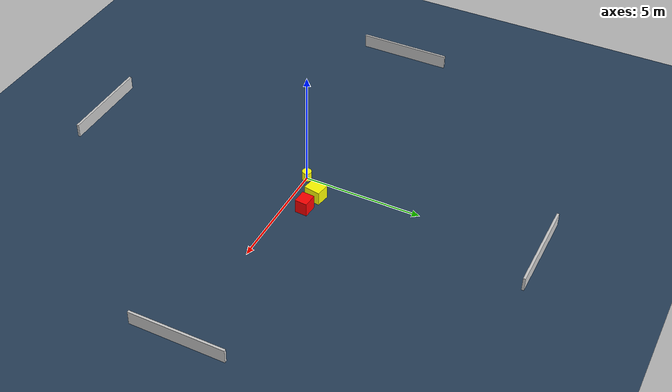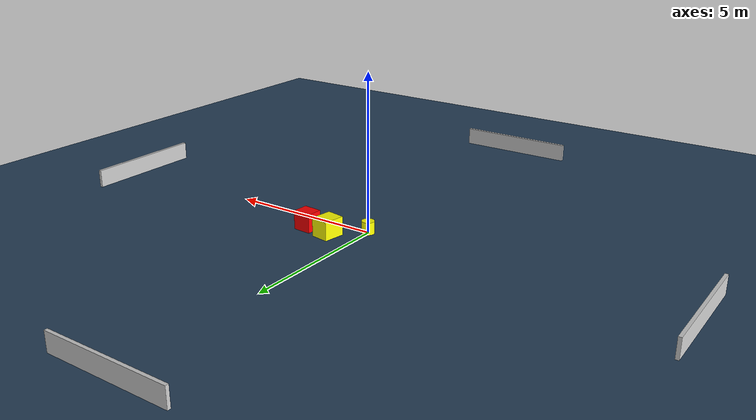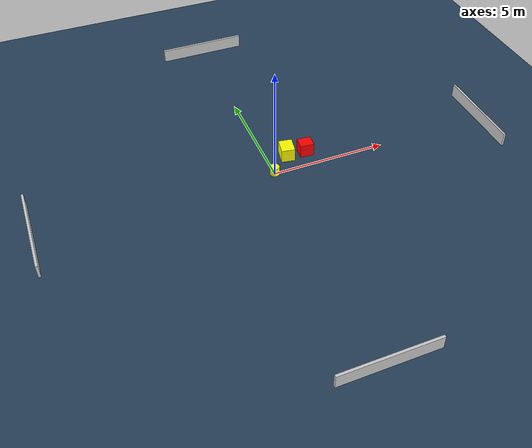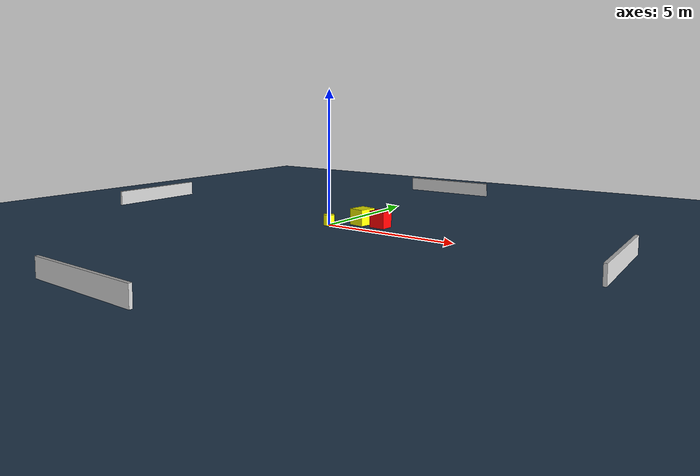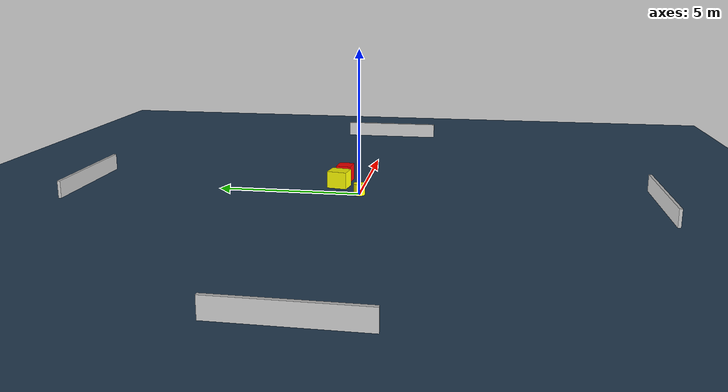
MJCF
<?xml version="1.0" ?>
<mujoco model="generated_environment">
  <option timestep="0.01" integrator="RK4" cone="elliptic"/>
  <default>
    <geom density="1"/>
  </default>
  <asset>
    <texture builtin="gradient" height="3072" name="skybox" rgb1="0.3 0.5 0.7" rgb2="0 0 0" type="skybox" width="512"/>
    <texture builtin="checker" height="300" name="groundplane" rgb1="0.2 0.3 0.4" rgb2="0.1 0.2 0.3" type="2d" width="300"/>
    <material name="groundplane" reflectance="0.2" texrepeat="5 5" texture="groundplane"/>
  </asset>
  <worldbody>
    <light dir="0 0 -1" directional="true" pos="0 0 1.5"/>
    <geom condim="3" friction="0.5 0.005 0.001" material="groundplane" name="floor" pos="0 0 0" size="0 0 0.05" type="plane"/>
    <body name="walls">
      <geom name="wall_1" condim="4" pos="-10.0 0.0 0.3" rgba="0.800000011920929 0.800000011920929 0.800000011920929 1.0" size="0.05 2.0 0.3" type="box"/>
      <geom name="wall_2" condim="4" pos="10.0 0.0 0.3" rgba="0.800000011920929 0.800000011920929 0.800000011920929 1.0" size="0.05 2.0 0.3" type="box"/>
      <geom name="wall_3" condim="4" pos="0.0 -10.0 0.3" rgba="0.800000011920929 0.800000011920929 0.800000011920929 1.0" size="2.0 0.05 0.3" type="box"/>
      <geom name="wall_4" condim="4" pos="0.0 10.0 0.3" rgba="0.800000011920929 0.800000011920929 0.800000011920929 1.0" size="2.0 0.05 0.3" type="box"/>
    </body>
    <body name="robot">
      <joint name="joint_x" type="slide" pos="0 0 0" axis="1 0 0"/>
      <joint name="joint_y" type="slide" pos="0 0 0" axis="0 1 0"/>
      <geom name="robot" type="cylinder" pos="0.0 0.0 0.2" size="0.2 0.2 0.0" mass="5.0" friction="1.0 0.005 0.0001" condim="4" rgba="1.0 1.0 0.0 1.0"/>
    </body>
    <body name="obstacle_1_movable">
      <geom name="obstacle_1_movable" condim="4" pos="0.8981574470978232 0.8639966972898289 0.3" euler="0 0 260.30809070164474" friction="0.0 0.005 0.001" rgba="1.0 1.0 0.0 1.0" size="0.3510377637668861 0.29333210532387005 0.3" type="box" mass="0.1"/>
      <joint type="free"/>
    </body>
    <body name="obstacle_2_static">
      <geom name="obstacle_2_static" condim="4" pos="1.739458387130654 0.7932729590954494 0.3" euler="0 0 356.0880446696635" friction="0.0 0.005 0.001" rgba="1.0 0.0 0.0 1.0" size="0.29991608670507586 0.26321849771156103 0.3" type="box"/>
    </body>
  </worldbody>
  <actuator>
    <motor name="actuator_x" joint="joint_x" gear="1" ctrlrange="-1 1"/>
    <motor name="actuator_y" joint="joint_y" gear="1" ctrlrange="-1 1"/>
  </actuator>
</mujoco>
